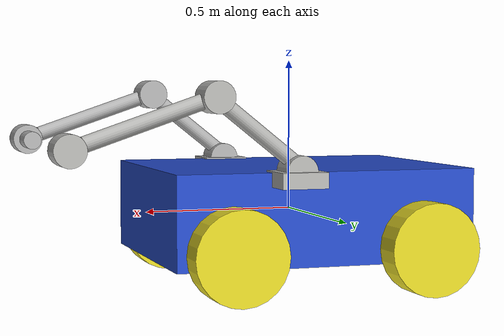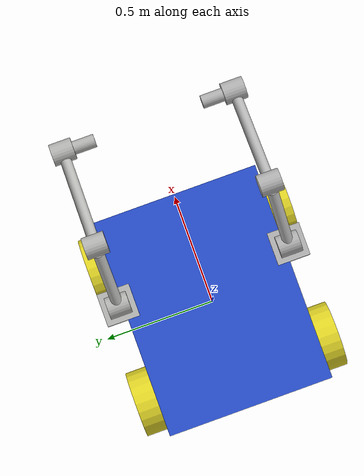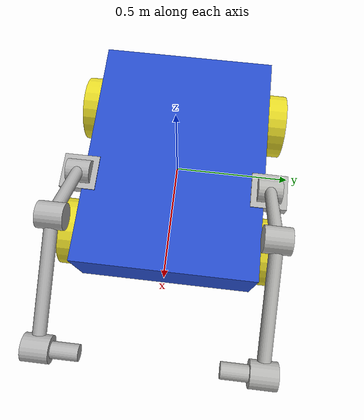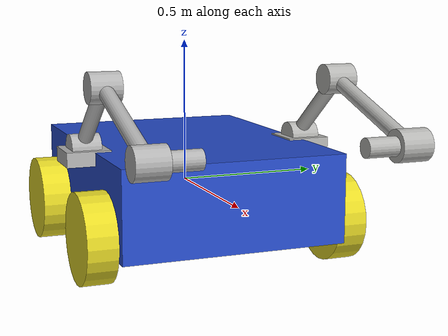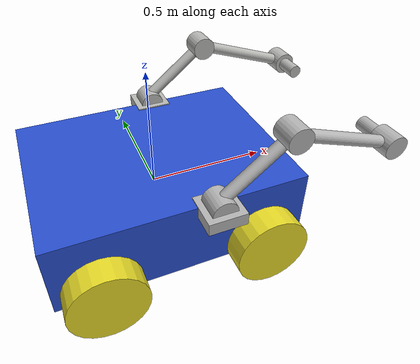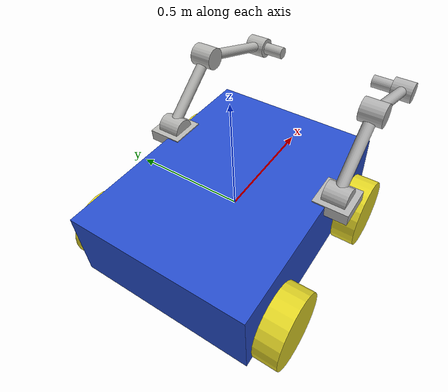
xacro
<?xml version="1.0"?>
<!-- Thats how to write comments -->
<!-- Example Xacro File -->

<robot name="differential_drive_robot_2" xmlns:xacro="http://www.ros.org/wiki/xacro">

<!-- Body Dimensions -->
<xacro:property name="body_link_x_dim" value="1"/>
<xacro:property name="body_link_y_dim" value="0.76"/>
<xacro:property name="body_link_z_dim" value="0.3"/>

<!-- Wheel Dimensions -->
<xacro:property name="wheel_link_radius" value="0.15"/>
<xacro:property name="wheel_link_length" value="0.1"/>
<xacro:property name="wheel_link_z_location" value="-0.1"/>

<!-- Material Density -->
<xacro:property name="body_density" value="2710.0"/>
<xacro:property name="wheel_density" value="2710.0"/>

<!-- PI constant -->
<xacro:property name="pi_const" value="3.14159265"/>

<!-- Robot body and wheel mass -->
<xacro:property name="body_mass" value="${body_density*body_link_x_dim*body_link_y_dim*body_link_z_dim}"/>
<xacro:property name="wheel_mass" value="${wheel_density*pi_const*wheel_link_length*wheel_link_radius*wheel_link_radius}"/>

<!-- Moments of Inertia of the wheel -->
<xacro:property name="Iz_wheel" value="${0.5*wheel_mass*wheel_link_radius*wheel_link_radius}"/>
<xacro:property name="I_wheel" value="${(1.0/12.0)*wheel_mass*(3.0*wheel_link_radius*wheel_link_radius+wheel_link_length*wheel_link_length)}"/>

<!-- This macro defines the inertial section of the wheel -->
<xacro:macro name="inertia_wheel">
<inertial>
    <origin rpy="0 0 0" xyz="0 0 0"/>
    <mass value="${wheel_mass}"/>
    <inertia ixx="${I_wheel}" ixy="0.0" ixz="0.0" iyy="${I_wheel}" iyz="0" izz="${Iz_wheel}"/>
</inertial>
</xacro:macro>

<!-- Over here we include the file that defines extra Gazebo option and robot control driver -->

<xacro:include filename="$(find mobile_robot)/model/robot.gazebo"/>
<!-- Include the arm definition -->
<xacro:include filename="$(find mobile_robot)/model/arm2.xacro"/>
<xacro:include filename="$(find mobile_robot)/model/arm2_2.xacro"/>

<!-- DEFINE LINKS AND JOINTS -->

<!-- necessary dummy -->
<link name="dummy">
</link>
<joint name="dummy_joint" type="fixed">
    <parent link="dummy"/>
    <child link="body_link"/>
</joint>

<!-- Start: Body link of the robot-->

<link name="body_link">
    <visual>
        <geometry>
            <box size="${body_link_x_dim} ${body_link_y_dim} ${body_link_z_dim}"/>
        </geometry>
        <origin rpy="0 0 0" xyz="0 0 0"/>
    </visual>

    <collision>
        <geometry>
            <box size="${body_link_x_dim} ${body_link_y_dim} ${body_link_z_dim}"/>
        </geometry>
        <origin rpy="0 0 0" xyz="0 0 0"/>
    </collision>

    <inertial>
        <origin rpy="0 0 0" xyz="0 0 0"/>
        <mass value="${body_mass}"/>
        <inertia
            ixx="${(1/12)*body_mass*(body_link_y_dim*body_link_y_dim+body_link_z_dim*body_link_z_dim)}"
            ixy="0"
            ixz="0"
            iyy="${(1/12)*body_mass*(body_link_x_dim*body_link_x_dim+body_link_z_dim*body_link_z_dim)}"
            iyz="0"
            izz="${(1/12)*body_mass*(body_link_y_dim*body_link_y_dim+body_link_x_dim*body_link_x_dim)}"/>
    </inertial>
</link>

<!-- END: Body link of the robot-->

<!-- Start: Back right wheel of the robot and the joint-->

<joint name="wheel1_joint" type="continuous">
    <parent link="body_link"/>
    <child link="wheel1_link"/>
    <origin xyz="${-body_link_x_dim/2 +1.2*wheel_link_radius} ${-body_link_y_dim/2-wheel_link_length/2} ${wheel_link_z_location}" rpy="0 0 0"/>
    <axis xyz="0 1 0"/>
    <limit effort="1000" velocity="1000"/>
    <dynamics damping="1.0" friction="1.0"/>
</joint>

<link name="wheel1_link">
    <visual>
        <geometry>
            <cylinder length = "${wheel_link_length}" radius="${wheel_link_radius}"/>
        </geometry>
    <origin rpy="${pi_const/2} 0 0" xyz="0 0 0"/>
    </visual>

    <collision>
        <geometry>
           <cylinder length = "${wheel_link_length}" radius="${wheel_link_radius}"/>
        </geometry>
    <origin rpy="${pi_const/2} 0 0" xyz="0 0 0"/>
    </collision>

    <xacro:inertia_wheel/>
 </link>

<!-- END:Right back wheel and joint-->

<!-- Start: Back left wheel of the robot and the joint-->

<joint name="wheel2_joint" type="continuous">
    <parent link="body_link"/>
    <child link="wheel2_link"/>
    <origin xyz="${-body_link_x_dim/2 +1.2*wheel_link_radius} ${body_link_y_dim/2+wheel_link_length/2} ${wheel_link_z_location}" rpy="0 0 0"/>
    <axis xyz="0 1 0"/>
    <limit effort="1000" velocity="1000"/>
    <dynamics damping="1.0" friction="1.0"/>
</joint>

<link name="wheel2_link">
    <visual>
        <geometry>
            <cylinder length="${wheel_link_length}" radius="${wheel_link_radius}"/>
        </geometry>
        <origin rpy="${pi_const/2} 0 0" xyz="0 0 0"/>
    </visual>

    <collision>
        <geometry>
           <cylinder length="${wheel_link_length}" radius="${wheel_link_radius}"/>
        </geometry>
        <origin rpy="${pi_const/2} 0 0" xyz="0 0 0"/>
    </collision>

    <xacro:inertia_wheel/>
</link>

<!-- END: Left back wheel and joint-->

<!-- Start: Front right wheel of the robot and the joint-->

<joint name="wheel3_joint" type="continuous">
    <parent link="body_link"/>
    <child link="wheel3_link"/>
    <origin xyz="${body_link_x_dim/2 -1.2*wheel_link_radius} ${-body_link_y_dim/2-wheel_link_length/2} ${wheel_link_z_location}" rpy="0 0 0"/>
    <axis xyz="0 1 0"/>
    <limit effort="1000" velocity="1000"/>
    <dynamics damping="1.0" friction="1.0"/>
</joint>

<link name="wheel3_link">
    <visual>
        <geometry>
            <cylinder length="${wheel_link_length}" radius="${wheel_link_radius}"/>
        </geometry>
        <origin rpy="${pi_const/2} 0 0" xyz="0 0 0"/>
    </visual>

    <collision>
        <geometry>
           <cylinder length="${wheel_link_length}" radius="${wheel_link_radius}"/>
        </geometry>
        <origin rpy="${pi_const/2} 0 0" xyz="0 0 0"/>
    </collision>

    <xacro:inertia_wheel/>
</link>

<!-- END: Right front wheel and joint-->

<!-- Start: Front left wheel of the robot and the joint-->

<joint name="wheel4_joint" type="continuous">
    <parent link="body_link"/>
    <child link="wheel4_link"/>
    <origin xyz="${body_link_x_dim/2 -1.2*wheel_link_radius} ${body_link_y_dim/2+wheel_link_length/2} ${wheel_link_z_location}" rpy="0 0 0"/>
    <axis xyz="0 1 0"/>
    <limit effort="1000" velocity="1000"/>
    <dynamics damping="1.0" friction="1.0"/>
</joint>

<link name="wheel4_link">
    <visual>
        <geometry>
            <cylinder length="${wheel_link_length}" radius="${wheel_link_radius}"/>
        </geometry>
        <origin rpy="${pi_const/2} 0 0" xyz="0 0 0"/>
    </visual>

    <collision>
        <geometry>
           <cylinder length="${wheel_link_length}" radius="${wheel_link_radius}"/>
        </geometry>
        <origin rpy="${pi_const/2} 0 0" xyz="0 0 0"/>
    </collision>

    <xacro:inertia_wheel/>
</link>

<!-- END: Left front wheel and joint-->
<!-- Integrate the arm joints to the body -->
<!-- Adjust the base link of the arm to attach to the rover -->
<joint name="arm_base_joint" type="fixed">
    <parent link="body_link"/>
    <child link="base_link"/>  <!-- Ensure 'base_link' is from arm2.xacro -->
    <origin xyz="0.12 -0.40 0.13" rpy="0 0 0"/> <!-- Adjust Z to sit on top of the rover -->
</joint>

<joint name="arm_base_joint_2" type="fixed">
    <parent link="body_link"/>
    <child link="base_link_2"/>  <!-- Ensure 'base_link' is from arm2.xacro -->
    <origin xyz="0.12 0.40 0.13" rpy="0 0 0"/> <!-- Adjust Z to sit on top of the rover -->
</joint>

<!-- END: Robot arm and rover integration -->
</robot>

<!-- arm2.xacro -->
<robot xmlns:xacro="http://www.ros.org/wiki/xacro" name="half_cylinder_revolute_joint_with_links">

  <material name="grey">
    <color rgba="0.7 0.7 0.7 1"/>
  </material>

  <material name="blue">
    <color rgba="0.0 0.0 1.0 1"/>  <!-- RGB values for blue -->
  </material>

  <material name="orange">
    <color rgba="1.0 0.5 0.0 1"/>  <!-- RGB values for orange -->
  </material>

  <!-- Base link -->
  <link name="base_link">
    <visual>
      <geometry>
        <box size="0.15 0.15 0.05"/>  <!-- Width, Depth, Height -->
      </geometry>
      <origin xyz="0 0 0" rpy="0 0 0"/>  <!-- Positioned at the origin -->
      <material name="grey"/>  <!-- Base link color -->
    </visual>
    <collision>
      <geometry>
        <box size="0.2 0.2 0.05"/>
      </geometry>
      <origin xyz="0 0 0" rpy="0 0 0"/>
    </collision>
    <inertial>
      <mass value="1.0"/>
      <origin xyz="0 0 0"/>
      <inertia ixx="0.01" ixy="0.0" ixz="0.0" iyy="0.01" iyz="0.0" izz="0.01"/>
    </inertial>
  </link>

  <!-- Revolute Joint (Half-Cylinder) -->
  <joint name="revolute_joint" type="revolute">
    <parent link="base_link"/>
    <child link="joint_link"/>
    <origin xyz="0 0 0.025" rpy="0 0.8 0"/>  <!-- Positioned at the center of the half-cylinder -->
    <axis xyz="0 1 0"/>  <!-- Revolute around the y-axis -->
    <limit lower="-3.14" upper="3.14" effort="100" velocity="1.0"/> <!-- Limits for the joint -->
    <dynamics damping="10" friction="10"/>
  </joint>

  <!-- Link representing the revolute joint as a half-cylinder -->
  <link name="joint_link">
    <visual>
      <geometry>
        <cylinder length="0.1" radius="0.05"/>  <!-- Full cylinder length and radius -->
      </geometry>
      <origin xyz="0 0 0" rpy="1.5708 0 0"/>  <!-- Rotate to lie on its side -->
      <material name="grey"/>  <!-- Material color -->
    </visual>
    <collision>
      <geometry>
        <cylinder length="0.1" radius="0.05"/>
      </geometry>
      <origin xyz="0 0 0" rpy="1.5708 0 0"/>  <!-- Same position for collision -->
    </collision>
    <inertial>
      <mass value="0.5"/>
      <origin xyz="0 0 0"/>
      <inertia ixx="0.01" ixy="0.0" ixz="0.0" iyy="0.01" iyz="0.0" izz="0.01"/>
    </inertial>
  </link>

  <!-- First Cylindrical Link -->
  <joint name="cylindrical_link_joint" type="revolute">
    <parent link="joint_link"/>
    <child link="cylindrical_link"/>
    <origin xyz="0 0 0.15" rpy="0 0.1 0"/>  <!-- Positioned at the end of the half-cylinder -->
    <axis xyz="0 0 1"/>  <!-- Revolute around the z-axis -->
    <limit lower="-3.14" upper="3.14" effort="100" velocity="1.0"/> <!-- Limits for the joint -->
    <dynamics damping="10" friction="10"/>
  </joint>

  <!-- Link representing the cylindrical link -->
  <link name="cylindrical_link">
    <visual>
      <geometry>
        <cylinder length="0.3" radius="0.025"/>  <!-- Cylindrical link definition -->
      </geometry>
      <origin xyz="0 0 0" rpy="0 0 0"/>  <!-- Centered on the joint -->
      <material name="grey"/>  <!-- Set the material to blue -->
    </visual>
    <collision>
      <geometry>
        <cylinder length="0.3" radius="0.025"/>  <!-- Same length as the visual -->
      </geometry>
      <origin xyz="0 0 0" rpy="0 0 0"/>  <!-- Same position for collision -->
    </collision>
    <inertial>
      <mass value="0.5"/>
      <origin xyz="0 0 0"/>
      <inertia ixx="0.01" ixy="0.0" ixz="0.0" iyy="0.01" iyz="0.0" izz="0.01"/>
    </inertial>
  </link>

  <!-- Second Revolute Joint (Full Cylinder) -->
  <joint name="second_revolute_joint" type="revolute">
    <parent link="cylindrical_link"/>
    <child link="second_joint_link"/>
    <origin xyz="0 0 0.2" rpy="0 1 0"/>  <!-- Positioned at the end of the first cylindrical link -->
    <axis xyz="0 1 0"/>  <!-- Revolute around the y-axis to match the orientation -->
    <limit lower="-3.14" upper="3.14" effort="100" velocity="1.0"/> <!-- Limits for the joint -->
    <dynamics damping="10" friction="10"/>
  </joint>

  <!-- Link representing the second revolute joint as a full cylinder -->
  <link name="second_joint_link">
    <visual>
      <geometry>
        <cylinder length="0.1" radius="0.05"/>  <!-- Full cylinder length and radius -->
      </geometry>
      <origin xyz="0 0 0" rpy="1.5708 0 0"/>  <!-- Centered on the joint, rotated to lie on its side -->
      <material name="grey"/>  <!-- Set the material to blue -->
    </visual>
    <collision>
      <geometry>
        <cylinder length="0.1" radius="0.05"/>
      </geometry>
      <origin xyz="0 0 0" rpy="1.5708 0 0"/>  <!-- Same position for collision -->
    </collision>
    <inertial>
      <mass value="0.3"/>
      <origin xyz="0 0 0"/>
      <inertia ixx="0.01" ixy="0.0" ixz="0.0" iyy="0.01" iyz="0.0" izz="0.01"/>
    </inertial>
  </link>

  <!-- New Cylindrical Link connected to the Second Revolute Joint -->
  <joint name="third_revolute_joint" type="revolute">
    <parent link="second_joint_link"/>
    <child link="third_link"/>
    <origin xyz="0 0 0.20" rpy="0 0 0"/>  <!-- Positioned at the end of the second joint link -->
    <axis xyz="0 0 1"/>  <!-- Revolute around the z-axis -->
    <limit lower="-3.14" upper="3.14" effort="100" velocity="1.0"/> <!-- Limits for the joint -->
    <dynamics damping="10" friction="10"/>
  </joint>

  <!-- Link representing the new cylindrical link -->
  <link name="third_link">
    <visual>
      <geometry>
        <cylinder length="0.45" radius="0.025"/>  <!-- New cylindrical link definition -->
      </geometry>
      <origin xyz="0 0 0" rpy="0 0 0"/>  <!-- Centered on the joint -->
      <material name="grey"/>  <!-- Set the material to grey -->
    </visual>
    <collision>
      <geometry>
        <cylinder length="0.45" radius="0.025"/>  <!-- Same length as the visual -->
      </geometry>
      <origin xyz="0 0 0" rpy="0 0 0"/>  <!-- Same position for collision -->
    </collision>
    <inertial>
      <mass value="0.5"/>
      <origin xyz="0 0 0"/>
      <inertia ixx="0.01" ixy="0.0" ixz="0.0" iyy="0.01" iyz="0.0" izz="0.01"/>
    </inertial>
  </link>

  <!-- New Solid Cylindrical Link at the end of the third link -->
  <joint name="solid_cylinder_joint" type="fixed">
    <parent link="third_link"/>
    <child link="solid_cylinder_link"/>
    <origin xyz="0 0 0.275" rpy="0 0 0"/>  <!-- Positioned at the end of the third link -->
  </joint>

  <!-- Link representing the new solid cylindrical link -->
  <link name="solid_cylinder_link">
    <visual>
      <geometry>
        <cylinder length="0.1" radius="0.05"/>  <!-- Solid cylindrical link definition -->
      </geometry>
      <origin xyz="0 0 0" rpy="1.5708 0 0"/>  <!-- Rotated to match the second revolute joint -->
      <material name="grey"/>  <!-- Set the material to grey -->
    </visual>
    <collision>
      <geometry>
        <cylinder length="0.1" radius="0.05"/>
      </geometry>
      <origin xyz="0 0 0" rpy="1.5708 0 0"/>  <!-- Same position for collision -->
    </collision>
    <inertial>
      <mass value="0.5"/>
      <origin xyz="0 0 0"/>
      <inertia ixx="0.01" ixy="0.0" ixz="0.0" iyy="0.01" iyz="0.0" izz="0.01"/>
    </inertial>
  </link>

  <!-- New Prismatic Joint -->
  <joint name="prismatic_joint" type="prismatic">
    <parent link="solid_cylinder_link"/>
    <child link="prismatic_link"/>
    <origin xyz="0 0.1 0" rpy="0 0 0"/>  <!-- Positioned at the end of the solid cylinder link -->
    <axis xyz="0 1 0"/>  <!-- Prismatic along the y-axis -->
    <limit lower="0" upper="0.3" effort="100" velocity="0.1"/> <!-- Limits for the joint -->
    <dynamics damping="10" friction="10"/>
  </joint>

  <!-- Link representing the prismatic extension -->
  <link name="prismatic_link">
    <visual>
      <geometry>
        <cylinder length="0.1" radius="0.03"/>  <!-- New prismatic link definition -->
      </geometry>
      <origin xyz="0 0 0" rpy="1.5708 0 0"/>  <!-- Rotated to match the joint -->
      <material name="grey"/>  <!-- Set the material to orange -->
    </visual>
    <collision>
      <geometry>
        <cylinder length="0.1" radius="0.05"/>
      </geometry>
      <origin xyz="0 0 0" rpy="1.5708 0 0"/>  <!-- Same position for collision -->
    </collision>
    <inertial>
      <mass value="0.5"/>
      <origin xyz="0 0 0"/>
      <inertia ixx="0.01" ixy="0.0" ixz="0.0" iyy="0.01" iyz="0.0" izz="0.01"/>
    </inertial>
  </link>

</robot>

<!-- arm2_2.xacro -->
<robot xmlns:xacro="http://www.ros.org/wiki/xacro" name="half_cylinder_revolute_joint_with_links">

  <!-- Define materials to use for the links -->
  <material name="grey2">
    <color rgba="0.71 0.71 0.7 1"/>
  </material>

  <!-- Base link -->
  <link name="base_link_2">
    <visual>
      <geometry>
        <box size="0.15 0.15 0.05"/>  <!-- Width, Depth, Height -->
      </geometry>
      <origin xyz="0 0 0" rpy="0 0 0"/>  <!-- Positioned at the origin -->
      <material name="grey2"/>  <!-- Base link color -->
    </visual>
    <collision>
      <geometry>
        <box size="0.2 0.2 0.05"/>
      </geometry>
      <origin xyz="0 0 0" rpy="0 0 0"/>
    </collision>
    <inertial>
      <mass value="1.0"/>
      <origin xyz="0 0 0"/>
      <inertia ixx="0.01" ixy="0.0" ixz="0.0" iyy="0.01" iyz="0.0" izz="0.01"/>
    </inertial>
  </link>

  <!-- Revolute Joint (Half-Cylinder) -->
  <joint name="revolute_joint_2" type="revolute">
    <parent link="base_link_2"/>
    <child link="joint_link_2"/>
    <origin xyz="0 0 0.025" rpy="0 0.8 0"/>  <!-- Positioned at the center of the half-cylinder -->
    <axis xyz="0 1 0"/>  <!-- Revolute around the y-axis -->
    <limit lower="-3.14" upper="3.14" effort="100" velocity="1.0"/> <!-- Limits for the joint -->
    <dynamics damping="10" friction="10"/>
  </joint>

  <!-- Link representing the revolute joint as a half-cylinder -->
  <link name="joint_link_2">
    <visual>
      <geometry>
        <cylinder length="0.1" radius="0.05"/>  <!-- Full cylinder length and radius -->
      </geometry>
      <origin xyz="0 0 0" rpy="1.5708 0 0"/>  <!-- Rotate to lie on its side -->
      <material name="grey2"/>  <!-- Material color -->
    </visual>
    <collision>
      <geometry>
        <cylinder length="0.1" radius="0.05"/>
      </geometry>
      <origin xyz="0 0 0" rpy="1.5708 0 0"/>  <!-- Same position for collision -->
    </collision>
    <inertial>
      <mass value="0.5"/>
      <origin xyz="0 0 0"/>
      <inertia ixx="0.01" ixy="0.0" ixz="0.0" iyy="0.01" iyz="0.0" izz="0.01"/>
    </inertial>
  </link>

  <!-- First Cylindrical Link -->
  <joint name="cylindrical_link_joint_2" type="revolute">
    <parent link="joint_link_2"/>
    <child link="cylindrical_link_2"/>
    <origin xyz="0 0 0.15" rpy="0 0.1 0"/>  <!-- Positioned at the end of the half-cylinder -->
    <axis xyz="0 0 1"/>  <!-- Revolute around the z-axis -->
    <limit lower="-3.14" upper="3.14" effort="100" velocity="1.0"/> <!-- Limits for the joint -->
    <dynamics damping="10" friction="10"/>
  </joint>

  <!-- Link representing the cylindrical link -->
  <link name="cylindrical_link_2">
    <visual>
      <geometry>
        <cylinder length="0.3" radius="0.025"/>  <!-- Cylindrical link definition -->
      </geometry>
      <origin xyz="0 0 0" rpy="0 0 0"/>  <!-- Centered on the joint -->
      <material name="grey2"/>  <!-- Set the material to blue -->
    </visual>
    <collision>
      <geometry>
        <cylinder length="0.3" radius="0.025"/>  <!-- Same length as the visual -->
      </geometry>
      <origin xyz="0 0 0" rpy="0 0 0"/>  <!-- Same position for collision -->
    </collision>
    <inertial>
      <mass value="0.5"/>
      <origin xyz="0 0 0"/>
      <inertia ixx="0.01" ixy="0.0" ixz="0.0" iyy="0.01" iyz="0.0" izz="0.01"/>
    </inertial>
  </link>

  <!-- Second Revolute Joint (Full Cylinder) -->
  <joint name="second_revolute_joint_2" type="revolute">
    <parent link="cylindrical_link_2"/>
    <child link="second_joint_link_2"/>
    <origin xyz="0 0 0.2" rpy="0 1 0"/>  <!-- Positioned at the end of the first cylindrical link -->
    <axis xyz="0 1 0"/>  <!-- Revolute around the y-axis to match the orientation -->
    <limit lower="-3.14" upper="3.14" effort="100" velocity="1.0"/> <!-- Limits for the joint -->
    <dynamics damping="10" friction="10"/>
  </joint>

  <!-- Link representing the second revolute joint as a full cylinder -->
  <link name="second_joint_link_2">
    <visual>
      <geometry>
        <cylinder length="0.1" radius="0.05"/>  <!-- Full cylinder length and radius -->
      </geometry>
      <origin xyz="0 0 0" rpy="1.5708 0 0"/>  <!-- Centered on the joint, rotated to lie on its side -->
      <material name="grey2"/>  <!-- Set the material to blue -->
    </visual>
    <collision>
      <geometry>
        <cylinder length="0.1" radius="0.05"/>
      </geometry>
      <origin xyz="0 0 0" rpy="1.5708 0 0"/>  <!-- Same position for collision -->
    </collision>
    <inertial>
      <mass value="0.3"/>
      <origin xyz="0 0 0"/>
      <inertia ixx="0.01" ixy="0.0" ixz="0.0" iyy="0.01" iyz="0.0" izz="0.01"/>
    </inertial>
  </link>

  <!-- New Cylindrical Link connected to the Second Revolute Joint -->
  <joint name="third_revolute_joint_2" type="revolute">
    <parent link="second_joint_link_2"/>
    <child link="third_link_2"/>
    <origin xyz="0 0 0.2" rpy="0 0 0"/>  <!-- Positioned at the end of the second joint link -->
    <axis xyz="0 0 1"/>  <!-- Revolute around the z-axis -->
    <limit lower="-3.14" upper="3.14" effort="100" velocity="1.0"/> <!-- Limits for the joint -->
    <dynamics damping="10" friction="10"/>
  </joint>

  <!-- Link representing the new cylindrical link -->
  <link name="third_link_2">
    <visual>
      <geometry>
        <cylinder length="0.45" radius="0.025"/>  <!-- New cylindrical link definition -->
      </geometry>
      <origin xyz="0 0 0" rpy="0 0 0"/>  <!-- Centered on the joint -->
      <material name="grey2"/>  <!-- Set the material to grey -->
    </visual>
    <collision>
      <geometry>
        <cylinder length="0.45" radius="0.025"/>  <!-- Same length as the visual -->
      </geometry>
      <origin xyz="0 0 0" rpy="0 0 0"/>  <!-- Same position for collision -->
    </collision>
    <inertial>
      <mass value="0.5"/>
      <origin xyz="0 0 0"/>
      <inertia ixx="0.01" ixy="0.0" ixz="0.0" iyy="0.01" iyz="0.0" izz="0.01"/>
    </inertial>
  </link>

  <!-- New Solid Cylindrical Link at the end of the third link -->
  <joint name="solid_cylinder_joint_2" type="fixed">
    <parent link="third_link_2"/>
    <child link="solid_cylinder_link_2"/>
    <origin xyz="0 0 0.275" rpy="0 0 0"/>  <!-- Positioned at the end of the third link -->
  </joint>

  <!-- Link representing the new solid cylindrical link -->
  <link name="solid_cylinder_link_2">
    <visual>
      <geometry>
        <cylinder length="0.1" radius="0.05"/>  <!-- Solid cylindrical link definition -->
      </geometry>
      <origin xyz="0 0 0" rpy="1.5708 0 0"/>  <!-- Rotated to match the second revolute joint -->
      <material name="grey2"/>  <!-- Set the material to grey -->
    </visual>
    <collision>
      <geometry>
        <cylinder length="0.1" radius="0.05"/>
      </geometry>
      <origin xyz="0 0 0" rpy="1.5708 0 0"/>  <!-- Same position for collision -->
    </collision>
    <inertial>
      <mass value="0.5"/>
      <origin xyz="0 0 0"/>
      <inertia ixx="0.01" ixy="0.0" ixz="0.0" iyy="0.01" iyz="0.0" izz="0.01"/>
    </inertial>
  </link>

  <!-- New Prismatic Joint -->
  <joint name="prismatic_joint_2" type="prismatic">
    <parent link="solid_cylinder_link_2"/>
    <child link="prismatic_link_2"/>
    <origin xyz="0 -0.1 0" rpy="0 0 0"/>  <!-- Positioned at the end of the solid cylinder link -->
    <axis xyz="0 1 0"/>  <!-- Prismatic along the y-axis -->
    <limit lower="0" upper="0.3" effort="100" velocity="0.1"/> <!-- Limits for the joint -->
    <dynamics damping="10" friction="10"/>
  </joint>

  <!-- Link representing the prismatic extension -->
  <link name="prismatic_link_2">
    <visual>
      <geometry>
        <cylinder length="0.1" radius="0.03"/>  <!-- New prismatic link definition -->
      </geometry>
      <origin xyz="0 0 0" rpy="1.5708 0 0"/>  <!-- Rotated to match the joint -->
      <material name="grey2"/>  <!-- Set the material to orange -->
    </visual>
    <collision>
      <geometry>
        <cylinder length="0.1" radius="0.05"/>
      </geometry>
      <origin xyz="0 0 0" rpy="1.5708 0 0"/>  <!-- Same position for collision -->
    </collision>
    <inertial>
      <mass value="0.5"/>
      <origin xyz="0 0 0"/>
      <inertia ixx="0.01" ixy="0.0" ixz="0.0" iyy="0.01" iyz="0.0" izz="0.01"/>
    </inertial>
  </link>

</robot>
